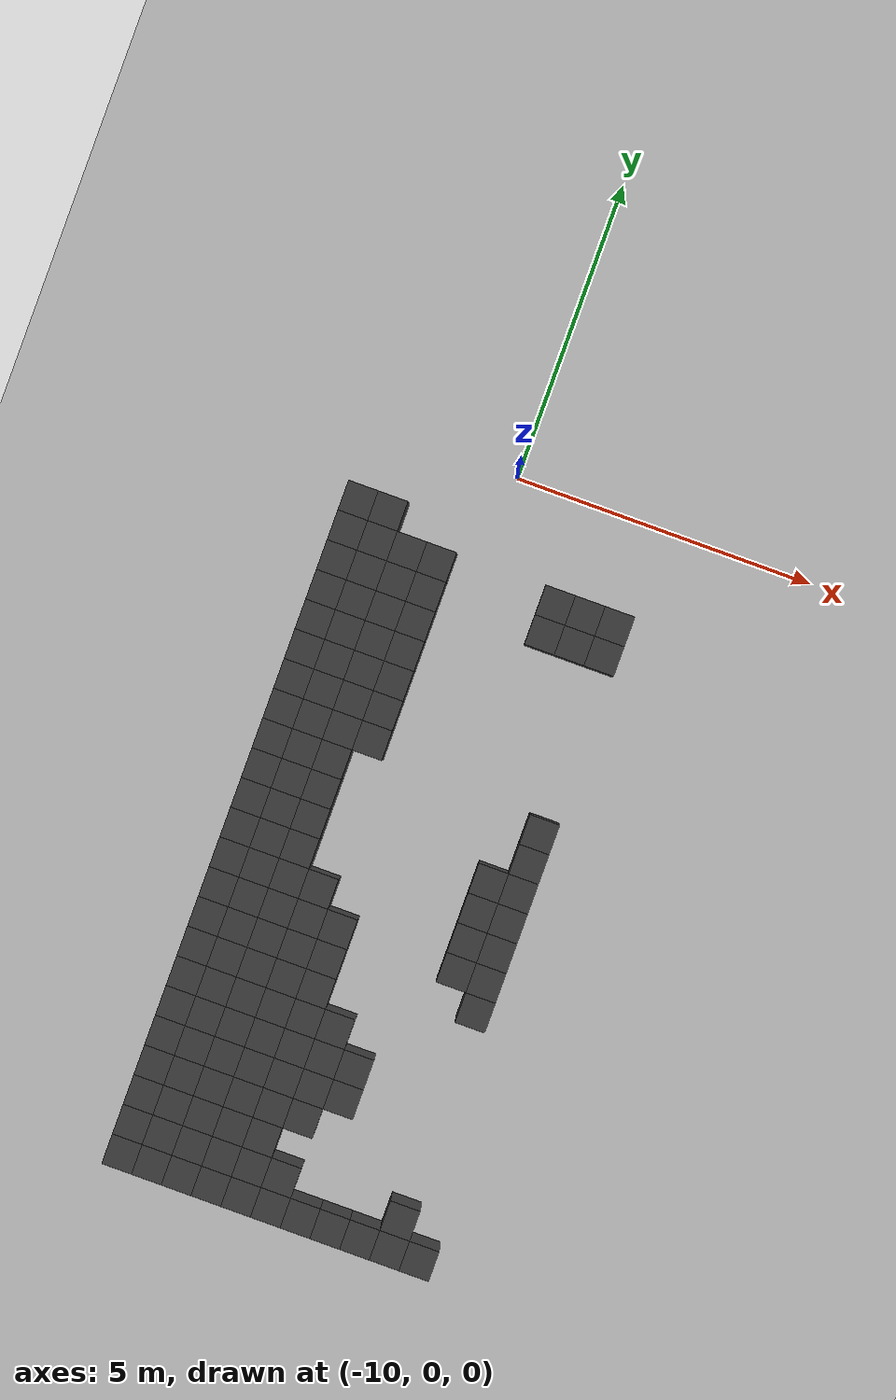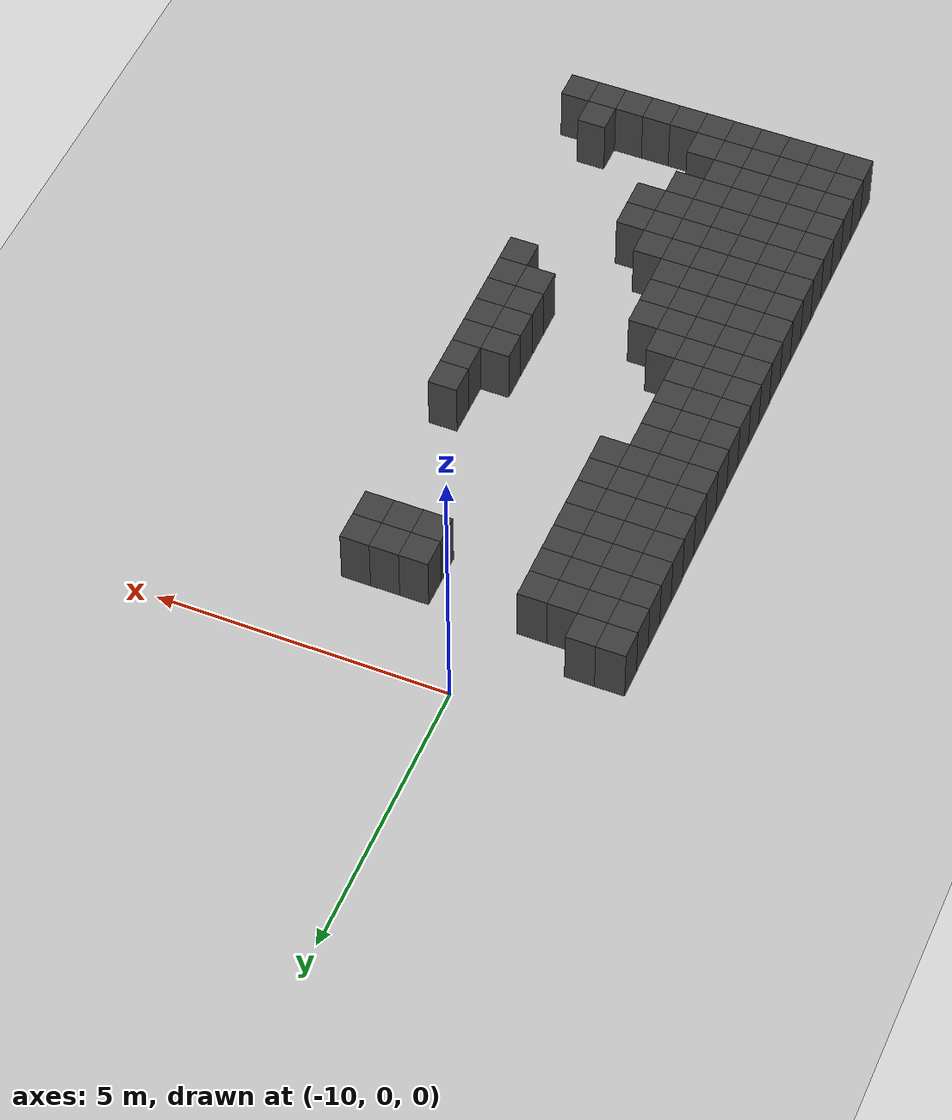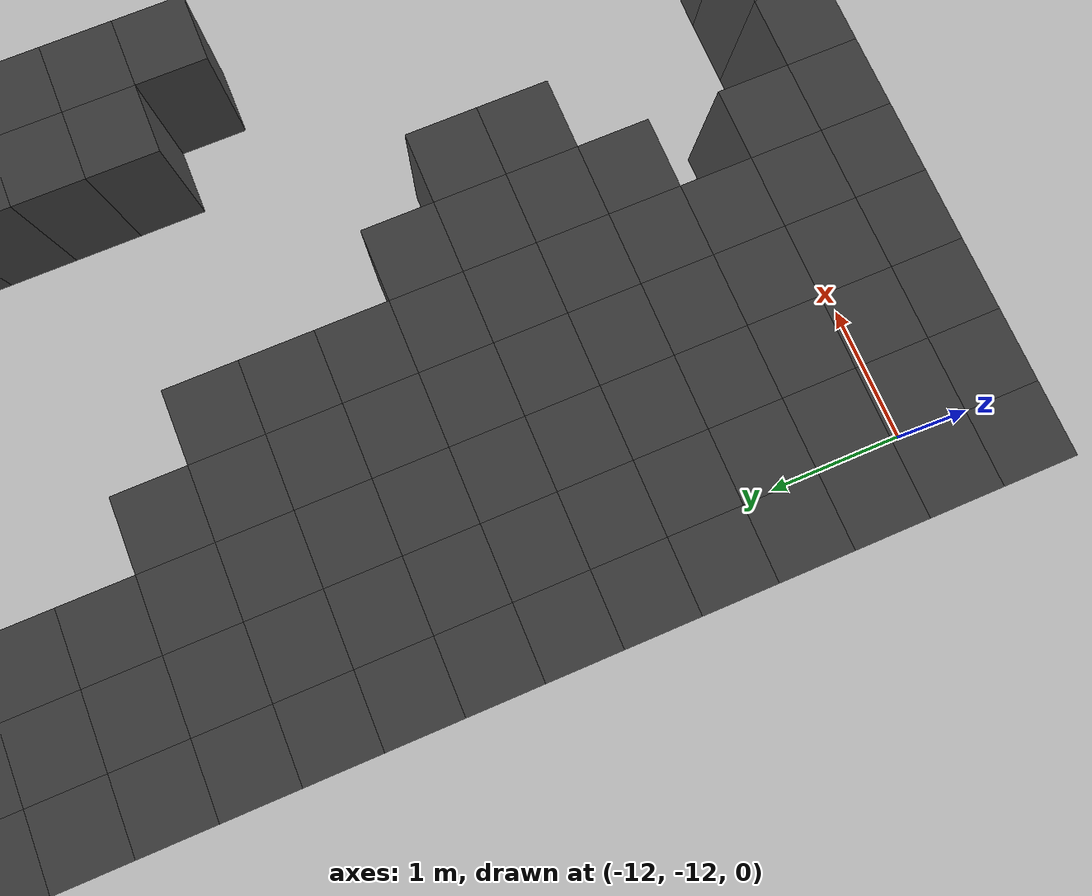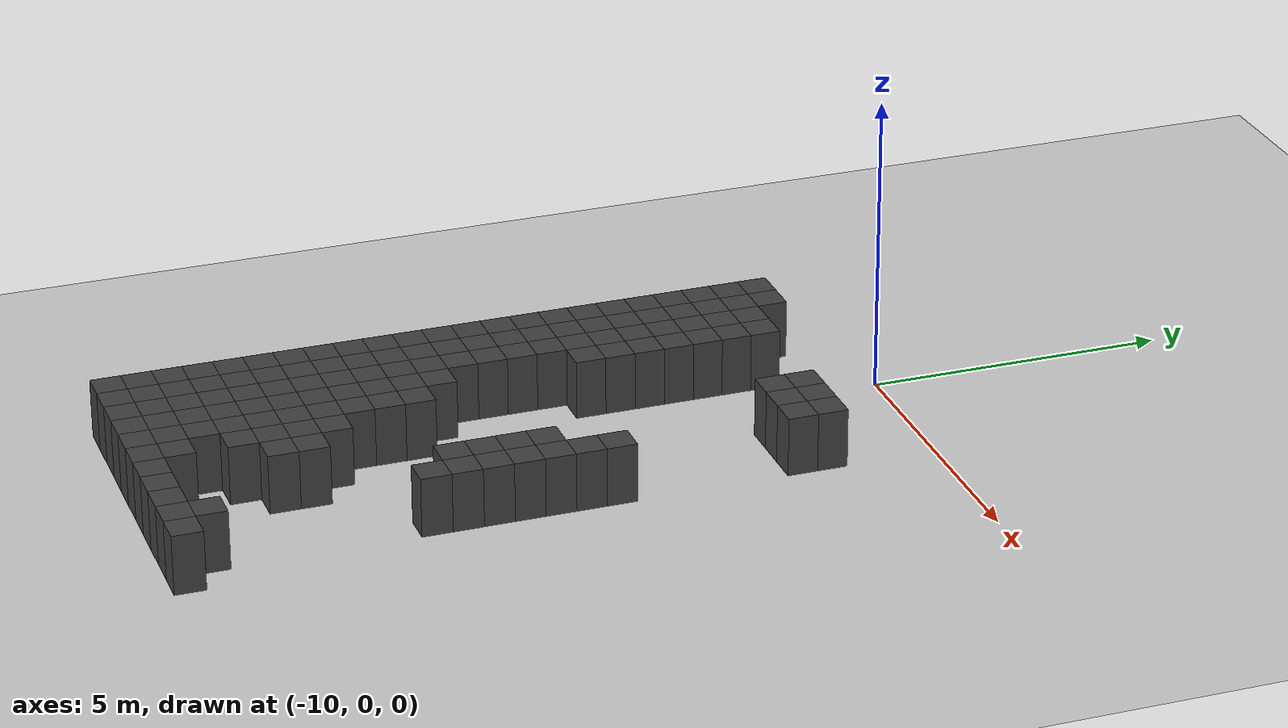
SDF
<sdf version="1.7">
 <world name="map_9713">
  <model name="ground_plane">
   <static>true</static>
   <link name="link">
    <collision name="collision">
     <geometry><plane><normal>0 0 1</normal><size>200 200</size></plane></geometry>
    </collision>
    <visual name="visual">
     <geometry><plane><normal>0 0 1</normal><size>200 200</size></plane></geometry>
     <material><ambient>0.8 0.8 0.8 1</ambient><diffuse>0.8 0.8 0.8 1</diffuse></material>
    </visual>
   </link>
  </model>
  <model name="maze_environment">
   <static>true</static>
   <link name="wall_489">
    <pose>-12.250 -1.250 0.500 0 0 0</pose>
    <collision name="col"><geometry><box><size>0.5 0.5 1.0</size></box></geometry></collision>
    <visual name="vis">
     <geometry><box><size>0.5 0.5 1.0</size></box></geometry>
     <material><ambient>0.15 0.15 0.15 1</ambient><diffuse>0.25 0.25 0.25 1</diffuse></material>
    </visual>
   </link>
   <link name="wall_490">
    <pose>-11.750 -1.250 0.500 0 0 0</pose>
    <collision name="col"><geometry><box><size>0.5 0.5 1.0</size></box></geometry></collision>
    <visual name="vis">
     <geometry><box><size>0.5 0.5 1.0</size></box></geometry>
     <material><ambient>0.15 0.15 0.15 1</ambient><diffuse>0.25 0.25 0.25 1</diffuse></material>
    </visual>
   </link>
   <link name="wall_512">
    <pose>-12.250 -1.750 0.500 0 0 0</pose>
    <collision name="col"><geometry><box><size>0.5 0.5 1.0</size></box></geometry></collision>
    <visual name="vis">
     <geometry><box><size>0.5 0.5 1.0</size></box></geometry>
     <material><ambient>0.15 0.15 0.15 1</ambient><diffuse>0.25 0.25 0.25 1</diffuse></material>
    </visual>
   </link>
   <link name="wall_513">
    <pose>-11.750 -1.750 0.500 0 0 0</pose>
    <collision name="col"><geometry><box><size>0.5 0.5 1.0</size></box></geometry></collision>
    <visual name="vis">
     <geometry><box><size>0.5 0.5 1.0</size></box></geometry>
     <material><ambient>0.15 0.15 0.15 1</ambient><diffuse>0.25 0.25 0.25 1</diffuse></material>
    </visual>
   </link>
   <link name="wall_514">
    <pose>-11.250 -1.750 0.500 0 0 0</pose>
    <collision name="col"><geometry><box><size>0.5 0.5 1.0</size></box></geometry></collision>
    <visual name="vis">
     <geometry><box><size>0.5 0.5 1.0</size></box></geometry>
     <material><ambient>0.15 0.15 0.15 1</ambient><diffuse>0.25 0.25 0.25 1</diffuse></material>
    </visual>
   </link>
   <link name="wall_515">
    <pose>-10.750 -1.750 0.500 0 0 0</pose>
    <collision name="col"><geometry><box><size>0.5 0.5 1.0</size></box></geometry></collision>
    <visual name="vis">
     <geometry><box><size>0.5 0.5 1.0</size></box></geometry>
     <material><ambient>0.15 0.15 0.15 1</ambient><diffuse>0.25 0.25 0.25 1</diffuse></material>
    </visual>
   </link>
   <link name="wall_516">
    <pose>-8.750 -1.750 0.500 0 0 0</pose>
    <collision name="col"><geometry><box><size>0.5 0.5 1.0</size></box></geometry></collision>
    <visual name="vis">
     <geometry><box><size>0.5 0.5 1.0</size></box></geometry>
     <material><ambient>0.15 0.15 0.15 1</ambient><diffuse>0.25 0.25 0.25 1</diffuse></material>
    </visual>
   </link>
   <link name="wall_517">
    <pose>-8.250 -1.750 0.500 0 0 0</pose>
    <collision name="col"><geometry><box><size>0.5 0.5 1.0</size></box></geometry></collision>
    <visual name="vis">
     <geometry><box><size>0.5 0.5 1.0</size></box></geometry>
     <material><ambient>0.15 0.15 0.15 1</ambient><diffuse>0.25 0.25 0.25 1</diffuse></material>
    </visual>
   </link>
   <link name="wall_518">
    <pose>-7.750 -1.750 0.500 0 0 0</pose>
    <collision name="col"><geometry><box><size>0.5 0.5 1.0</size></box></geometry></collision>
    <visual name="vis">
     <geometry><box><size>0.5 0.5 1.0</size></box></geometry>
     <material><ambient>0.15 0.15 0.15 1</ambient><diffuse>0.25 0.25 0.25 1</diffuse></material>
    </visual>
   </link>
   <link name="wall_533">
    <pose>-12.250 -2.250 0.500 0 0 0</pose>
    <collision name="col"><geometry><box><size>0.5 0.5 1.0</size></box></geometry></collision>
    <visual name="vis">
     <geometry><box><size>0.5 0.5 1.0</size></box></geometry>
     <material><ambient>0.15 0.15 0.15 1</ambient><diffuse>0.25 0.25 0.25 1</diffuse></material>
    </visual>
   </link>
   <link name="wall_534">
    <pose>-11.750 -2.250 0.500 0 0 0</pose>
    <collision name="col"><geometry><box><size>0.5 0.5 1.0</size></box></geometry></collision>
    <visual name="vis">
     <geometry><box><size>0.5 0.5 1.0</size></box></geometry>
     <material><ambient>0.15 0.15 0.15 1</ambient><diffuse>0.25 0.25 0.25 1</diffuse></material>
    </visual>
   </link>
   <link name="wall_535">
    <pose>-11.250 -2.250 0.500 0 0 0</pose>
    <collision name="col"><geometry><box><size>0.5 0.5 1.0</size></box></geometry></collision>
    <visual name="vis">
     <geometry><box><size>0.5 0.5 1.0</size></box></geometry>
     <material><ambient>0.15 0.15 0.15 1</ambient><diffuse>0.25 0.25 0.25 1</diffuse></material>
    </visual>
   </link>
   <link name="wall_536">
    <pose>-10.750 -2.250 0.500 0 0 0</pose>
    <collision name="col"><geometry><box><size>0.5 0.5 1.0</size></box></geometry></collision>
    <visual name="vis">
     <geometry><box><size>0.5 0.5 1.0</size></box></geometry>
     <material><ambient>0.15 0.15 0.15 1</ambient><diffuse>0.25 0.25 0.25 1</diffuse></material>
    </visual>
   </link>
   <link name="wall_537">
    <pose>-8.750 -2.250 0.500 0 0 0</pose>
    <collision name="col"><geometry><box><size>0.5 0.5 1.0</size></box></geometry></collision>
    <visual name="vis">
     <geometry><box><size>0.5 0.5 1.0</size></box></geometry>
     <material><ambient>0.15 0.15 0.15 1</ambient><diffuse>0.25 0.25 0.25 1</diffuse></material>
    </visual>
   </link>
   <link name="wall_538">
    <pose>-8.250 -2.250 0.500 0 0 0</pose>
    <collision name="col"><geometry><box><size>0.5 0.5 1.0</size></box></geometry></collision>
    <visual name="vis">
     <geometry><box><size>0.5 0.5 1.0</size></box></geometry>
     <material><ambient>0.15 0.15 0.15 1</ambient><diffuse>0.25 0.25 0.25 1</diffuse></material>
    </visual>
   </link>
   <link name="wall_539">
    <pose>-7.750 -2.250 0.500 0 0 0</pose>
    <collision name="col"><geometry><box><size>0.5 0.5 1.0</size></box></geometry></collision>
    <visual name="vis">
     <geometry><box><size>0.5 0.5 1.0</size></box></geometry>
     <material><ambient>0.15 0.15 0.15 1</ambient><diffuse>0.25 0.25 0.25 1</diffuse></material>
    </visual>
   </link>
   <link name="wall_557">
    <pose>-12.250 -2.750 0.500 0 0 0</pose>
    <collision name="col"><geometry><box><size>0.5 0.5 1.0</size></box></geometry></collision>
    <visual name="vis">
     <geometry><box><size>0.5 0.5 1.0</size></box></geometry>
     <material><ambient>0.15 0.15 0.15 1</ambient><diffuse>0.25 0.25 0.25 1</diffuse></material>
    </visual>
   </link>
   <link name="wall_558">
    <pose>-11.750 -2.750 0.500 0 0 0</pose>
    <collision name="col"><geometry><box><size>0.5 0.5 1.0</size></box></geometry></collision>
    <visual name="vis">
     <geometry><box><size>0.5 0.5 1.0</size></box></geometry>
     <material><ambient>0.15 0.15 0.15 1</ambient><diffuse>0.25 0.25 0.25 1</diffuse></material>
    </visual>
   </link>
   <link name="wall_559">
    <pose>-11.250 -2.750 0.500 0 0 0</pose>
    <collision name="col"><geometry><box><size>0.5 0.5 1.0</size></box></geometry></collision>
    <visual name="vis">
     <geometry><box><size>0.5 0.5 1.0</size></box></geometry>
     <material><ambient>0.15 0.15 0.15 1</ambient><diffuse>0.25 0.25 0.25 1</diffuse></material>
    </visual>
   </link>
   <link name="wall_560">
    <pose>-10.750 -2.750 0.500 0 0 0</pose>
    <collision name="col"><geometry><box><size>0.5 0.5 1.0</size></box></geometry></collision>
    <visual name="vis">
     <geometry><box><size>0.5 0.5 1.0</size></box></geometry>
     <material><ambient>0.15 0.15 0.15 1</ambient><diffuse>0.25 0.25 0.25 1</diffuse></material>
    </visual>
   </link>
   <link name="wall_579">
    <pose>-12.250 -3.250 0.500 0 0 0</pose>
    <collision name="col"><geometry><box><size>0.5 0.5 1.0</size></box></geometry></collision>
    <visual name="vis">
     <geometry><box><size>0.5 0.5 1.0</size></box></geometry>
     <material><ambient>0.15 0.15 0.15 1</ambient><diffuse>0.25 0.25 0.25 1</diffuse></material>
    </visual>
   </link>
   <link name="wall_580">
    <pose>-11.750 -3.250 0.500 0 0 0</pose>
    <collision name="col"><geometry><box><size>0.5 0.5 1.0</size></box></geometry></collision>
    <visual name="vis">
     <geometry><box><size>0.5 0.5 1.0</size></box></geometry>
     <material><ambient>0.15 0.15 0.15 1</ambient><diffuse>0.25 0.25 0.25 1</diffuse></material>
    </visual>
   </link>
   <link name="wall_581">
    <pose>-11.250 -3.250 0.500 0 0 0</pose>
    <collision name="col"><geometry><box><size>0.5 0.5 1.0</size></box></geometry></collision>
    <visual name="vis">
     <geometry><box><size>0.5 0.5 1.0</size></box></geometry>
     <material><ambient>0.15 0.15 0.15 1</ambient><diffuse>0.25 0.25 0.25 1</diffuse></material>
    </visual>
   </link>
   <link name="wall_582">
    <pose>-10.750 -3.250 0.500 0 0 0</pose>
    <collision name="col"><geometry><box><size>0.5 0.5 1.0</size></box></geometry></collision>
    <visual name="vis">
     <geometry><box><size>0.5 0.5 1.0</size></box></geometry>
     <material><ambient>0.15 0.15 0.15 1</ambient><diffuse>0.25 0.25 0.25 1</diffuse></material>
    </visual>
   </link>
   <link name="wall_601">
    <pose>-12.250 -3.750 0.500 0 0 0</pose>
    <collision name="col"><geometry><box><size>0.5 0.5 1.0</size></box></geometry></collision>
    <visual name="vis">
     <geometry><box><size>0.5 0.5 1.0</size></box></geometry>
     <material><ambient>0.15 0.15 0.15 1</ambient><diffuse>0.25 0.25 0.25 1</diffuse></material>
    </visual>
   </link>
   <link name="wall_602">
    <pose>-11.750 -3.750 0.500 0 0 0</pose>
    <collision name="col"><geometry><box><size>0.5 0.5 1.0</size></box></geometry></collision>
    <visual name="vis">
     <geometry><box><size>0.5 0.5 1.0</size></box></geometry>
     <material><ambient>0.15 0.15 0.15 1</ambient><diffuse>0.25 0.25 0.25 1</diffuse></material>
    </visual>
   </link>
   <link name="wall_603">
    <pose>-11.250 -3.750 0.500 0 0 0</pose>
    <collision name="col"><geometry><box><size>0.5 0.5 1.0</size></box></geometry></collision>
    <visual name="vis">
     <geometry><box><size>0.5 0.5 1.0</size></box></geometry>
     <material><ambient>0.15 0.15 0.15 1</ambient><diffuse>0.25 0.25 0.25 1</diffuse></material>
    </visual>
   </link>
   <link name="wall_604">
    <pose>-10.750 -3.750 0.500 0 0 0</pose>
    <collision name="col"><geometry><box><size>0.5 0.5 1.0</size></box></geometry></collision>
    <visual name="vis">
     <geometry><box><size>0.5 0.5 1.0</size></box></geometry>
     <material><ambient>0.15 0.15 0.15 1</ambient><diffuse>0.25 0.25 0.25 1</diffuse></material>
    </visual>
   </link>
   <link name="wall_621">
    <pose>-12.250 -4.250 0.500 0 0 0</pose>
    <collision name="col"><geometry><box><size>0.5 0.5 1.0</size></box></geometry></collision>
    <visual name="vis">
     <geometry><box><size>0.5 0.5 1.0</size></box></geometry>
     <material><ambient>0.15 0.15 0.15 1</ambient><diffuse>0.25 0.25 0.25 1</diffuse></material>
    </visual>
   </link>
   <link name="wall_622">
    <pose>-11.750 -4.250 0.500 0 0 0</pose>
    <collision name="col"><geometry><box><size>0.5 0.5 1.0</size></box></geometry></collision>
    <visual name="vis">
     <geometry><box><size>0.5 0.5 1.0</size></box></geometry>
     <material><ambient>0.15 0.15 0.15 1</ambient><diffuse>0.25 0.25 0.25 1</diffuse></material>
    </visual>
   </link>
   <link name="wall_623">
    <pose>-11.250 -4.250 0.500 0 0 0</pose>
    <collision name="col"><geometry><box><size>0.5 0.5 1.0</size></box></geometry></collision>
    <visual name="vis">
     <geometry><box><size>0.5 0.5 1.0</size></box></geometry>
     <material><ambient>0.15 0.15 0.15 1</ambient><diffuse>0.25 0.25 0.25 1</diffuse></material>
    </visual>
   </link>
   <link name="wall_624">
    <pose>-10.750 -4.250 0.500 0 0 0</pose>
    <collision name="col"><geometry><box><size>0.5 0.5 1.0</size></box></geometry></collision>
    <visual name="vis">
     <geometry><box><size>0.5 0.5 1.0</size></box></geometry>
     <material><ambient>0.15 0.15 0.15 1</ambient><diffuse>0.25 0.25 0.25 1</diffuse></material>
    </visual>
   </link>
   <link name="wall_637">
    <pose>-12.250 -4.750 0.500 0 0 0</pose>
    <collision name="col"><geometry><box><size>0.5 0.5 1.0</size></box></geometry></collision>
    <visual name="vis">
     <geometry><box><size>0.5 0.5 1.0</size></box></geometry>
     <material><ambient>0.15 0.15 0.15 1</ambient><diffuse>0.25 0.25 0.25 1</diffuse></material>
    </visual>
   </link>
   <link name="wall_638">
    <pose>-11.750 -4.750 0.500 0 0 0</pose>
    <collision name="col"><geometry><box><size>0.5 0.5 1.0</size></box></geometry></collision>
    <visual name="vis">
     <geometry><box><size>0.5 0.5 1.0</size></box></geometry>
     <material><ambient>0.15 0.15 0.15 1</ambient><diffuse>0.25 0.25 0.25 1</diffuse></material>
    </visual>
   </link>
   <link name="wall_639">
    <pose>-11.250 -4.750 0.500 0 0 0</pose>
    <collision name="col"><geometry><box><size>0.5 0.5 1.0</size></box></geometry></collision>
    <visual name="vis">
     <geometry><box><size>0.5 0.5 1.0</size></box></geometry>
     <material><ambient>0.15 0.15 0.15 1</ambient><diffuse>0.25 0.25 0.25 1</diffuse></material>
    </visual>
   </link>
   <link name="wall_640">
    <pose>-10.750 -4.750 0.500 0 0 0</pose>
    <collision name="col"><geometry><box><size>0.5 0.5 1.0</size></box></geometry></collision>
    <visual name="vis">
     <geometry><box><size>0.5 0.5 1.0</size></box></geometry>
     <material><ambient>0.15 0.15 0.15 1</ambient><diffuse>0.25 0.25 0.25 1</diffuse></material>
    </visual>
   </link>
   <link name="wall_652">
    <pose>-12.250 -5.250 0.500 0 0 0</pose>
    <collision name="col"><geometry><box><size>0.5 0.5 1.0</size></box></geometry></collision>
    <visual name="vis">
     <geometry><box><size>0.5 0.5 1.0</size></box></geometry>
     <material><ambient>0.15 0.15 0.15 1</ambient><diffuse>0.25 0.25 0.25 1</diffuse></material>
    </visual>
   </link>
   <link name="wall_653">
    <pose>-11.750 -5.250 0.500 0 0 0</pose>
    <collision name="col"><geometry><box><size>0.5 0.5 1.0</size></box></geometry></collision>
    <visual name="vis">
     <geometry><box><size>0.5 0.5 1.0</size></box></geometry>
     <material><ambient>0.15 0.15 0.15 1</ambient><diffuse>0.25 0.25 0.25 1</diffuse></material>
    </visual>
   </link>
   <link name="wall_654">
    <pose>-11.250 -5.250 0.500 0 0 0</pose>
    <collision name="col"><geometry><box><size>0.5 0.5 1.0</size></box></geometry></collision>
    <visual name="vis">
     <geometry><box><size>0.5 0.5 1.0</size></box></geometry>
     <material><ambient>0.15 0.15 0.15 1</ambient><diffuse>0.25 0.25 0.25 1</diffuse></material>
    </visual>
   </link>
   <link name="wall_655">
    <pose>-7.750 -5.250 0.500 0 0 0</pose>
    <collision name="col"><geometry><box><size>0.5 0.5 1.0</size></box></geometry></collision>
    <visual name="vis">
     <geometry><box><size>0.5 0.5 1.0</size></box></geometry>
     <material><ambient>0.15 0.15 0.15 1</ambient><diffuse>0.25 0.25 0.25 1</diffuse></material>
    </visual>
   </link>
   <link name="wall_668">
    <pose>-12.250 -5.750 0.500 0 0 0</pose>
    <collision name="col"><geometry><box><size>0.5 0.5 1.0</size></box></geometry></collision>
    <visual name="vis">
     <geometry><box><size>0.5 0.5 1.0</size></box></geometry>
     <material><ambient>0.15 0.15 0.15 1</ambient><diffuse>0.25 0.25 0.25 1</diffuse></material>
    </visual>
   </link>
   <link name="wall_669">
    <pose>-11.750 -5.750 0.500 0 0 0</pose>
    <collision name="col"><geometry><box><size>0.5 0.5 1.0</size></box></geometry></collision>
    <visual name="vis">
     <geometry><box><size>0.5 0.5 1.0</size></box></geometry>
     <material><ambient>0.15 0.15 0.15 1</ambient><diffuse>0.25 0.25 0.25 1</diffuse></material>
    </visual>
   </link>
   <link name="wall_670">
    <pose>-11.250 -5.750 0.500 0 0 0</pose>
    <collision name="col"><geometry><box><size>0.5 0.5 1.0</size></box></geometry></collision>
    <visual name="vis">
     <geometry><box><size>0.5 0.5 1.0</size></box></geometry>
     <material><ambient>0.15 0.15 0.15 1</ambient><diffuse>0.25 0.25 0.25 1</diffuse></material>
    </visual>
   </link>
   <link name="wall_671">
    <pose>-7.750 -5.750 0.500 0 0 0</pose>
    <collision name="col"><geometry><box><size>0.5 0.5 1.0</size></box></geometry></collision>
    <visual name="vis">
     <geometry><box><size>0.5 0.5 1.0</size></box></geometry>
     <material><ambient>0.15 0.15 0.15 1</ambient><diffuse>0.25 0.25 0.25 1</diffuse></material>
    </visual>
   </link>
   <link name="wall_687">
    <pose>-12.250 -6.250 0.500 0 0 0</pose>
    <collision name="col"><geometry><box><size>0.5 0.5 1.0</size></box></geometry></collision>
    <visual name="vis">
     <geometry><box><size>0.5 0.5 1.0</size></box></geometry>
     <material><ambient>0.15 0.15 0.15 1</ambient><diffuse>0.25 0.25 0.25 1</diffuse></material>
    </visual>
   </link>
   <link name="wall_688">
    <pose>-11.750 -6.250 0.500 0 0 0</pose>
    <collision name="col"><geometry><box><size>0.5 0.5 1.0</size></box></geometry></collision>
    <visual name="vis">
     <geometry><box><size>0.5 0.5 1.0</size></box></geometry>
     <material><ambient>0.15 0.15 0.15 1</ambient><diffuse>0.25 0.25 0.25 1</diffuse></material>
    </visual>
   </link>
   <link name="wall_689">
    <pose>-11.250 -6.250 0.500 0 0 0</pose>
    <collision name="col"><geometry><box><size>0.5 0.5 1.0</size></box></geometry></collision>
    <visual name="vis">
     <geometry><box><size>0.5 0.5 1.0</size></box></geometry>
     <material><ambient>0.15 0.15 0.15 1</ambient><diffuse>0.25 0.25 0.25 1</diffuse></material>
    </visual>
   </link>
   <link name="wall_690">
    <pose>-8.250 -6.250 0.500 0 0 0</pose>
    <collision name="col"><geometry><box><size>0.5 0.5 1.0</size></box></geometry></collision>
    <visual name="vis">
     <geometry><box><size>0.5 0.5 1.0</size></box></geometry>
     <material><ambient>0.15 0.15 0.15 1</ambient><diffuse>0.25 0.25 0.25 1</diffuse></material>
    </visual>
   </link>
   <link name="wall_691">
    <pose>-7.750 -6.250 0.500 0 0 0</pose>
    <collision name="col"><geometry><box><size>0.5 0.5 1.0</size></box></geometry></collision>
    <visual name="vis">
     <geometry><box><size>0.5 0.5 1.0</size></box></geometry>
     <material><ambient>0.15 0.15 0.15 1</ambient><diffuse>0.25 0.25 0.25 1</diffuse></material>
    </visual>
   </link>
   <link name="wall_711">
    <pose>-12.250 -6.750 0.500 0 0 0</pose>
    <collision name="col"><geometry><box><size>0.5 0.5 1.0</size></box></geometry></collision>
    <visual name="vis">
     <geometry><box><size>0.5 0.5 1.0</size></box></geometry>
     <material><ambient>0.15 0.15 0.15 1</ambient><diffuse>0.25 0.25 0.25 1</diffuse></material>
    </visual>
   </link>
   <link name="wall_712">
    <pose>-11.750 -6.750 0.500 0 0 0</pose>
    <collision name="col"><geometry><box><size>0.5 0.5 1.0</size></box></geometry></collision>
    <visual name="vis">
     <geometry><box><size>0.5 0.5 1.0</size></box></geometry>
     <material><ambient>0.15 0.15 0.15 1</ambient><diffuse>0.25 0.25 0.25 1</diffuse></material>
    </visual>
   </link>
   <link name="wall_713">
    <pose>-11.250 -6.750 0.500 0 0 0</pose>
    <collision name="col"><geometry><box><size>0.5 0.5 1.0</size></box></geometry></collision>
    <visual name="vis">
     <geometry><box><size>0.5 0.5 1.0</size></box></geometry>
     <material><ambient>0.15 0.15 0.15 1</ambient><diffuse>0.25 0.25 0.25 1</diffuse></material>
    </visual>
   </link>
   <link name="wall_714">
    <pose>-8.250 -6.750 0.500 0 0 0</pose>
    <collision name="col"><geometry><box><size>0.5 0.5 1.0</size></box></geometry></collision>
    <visual name="vis">
     <geometry><box><size>0.5 0.5 1.0</size></box></geometry>
     <material><ambient>0.15 0.15 0.15 1</ambient><diffuse>0.25 0.25 0.25 1</diffuse></material>
    </visual>
   </link>
   <link name="wall_715">
    <pose>-7.750 -6.750 0.500 0 0 0</pose>
    <collision name="col"><geometry><box><size>0.5 0.5 1.0</size></box></geometry></collision>
    <visual name="vis">
     <geometry><box><size>0.5 0.5 1.0</size></box></geometry>
     <material><ambient>0.15 0.15 0.15 1</ambient><diffuse>0.25 0.25 0.25 1</diffuse></material>
    </visual>
   </link>
   <link name="wall_741">
    <pose>-12.250 -7.250 0.500 0 0 0</pose>
    <collision name="col"><geometry><box><size>0.5 0.5 1.0</size></box></geometry></collision>
    <visual name="vis">
     <geometry><box><size>0.5 0.5 1.0</size></box></geometry>
     <material><ambient>0.15 0.15 0.15 1</ambient><diffuse>0.25 0.25 0.25 1</diffuse></material>
    </visual>
   </link>
   <link name="wall_742">
    <pose>-11.750 -7.250 0.500 0 0 0</pose>
    <collision name="col"><geometry><box><size>0.5 0.5 1.0</size></box></geometry></collision>
    <visual name="vis">
     <geometry><box><size>0.5 0.5 1.0</size></box></geometry>
     <material><ambient>0.15 0.15 0.15 1</ambient><diffuse>0.25 0.25 0.25 1</diffuse></material>
    </visual>
   </link>
   <link name="wall_743">
    <pose>-11.250 -7.250 0.500 0 0 0</pose>
    <collision name="col"><geometry><box><size>0.5 0.5 1.0</size></box></geometry></collision>
    <visual name="vis">
     <geometry><box><size>0.5 0.5 1.0</size></box></geometry>
     <material><ambient>0.15 0.15 0.15 1</ambient><diffuse>0.25 0.25 0.25 1</diffuse></material>
    </visual>
   </link>
   <link name="wall_744">
    <pose>-10.750 -7.250 0.500 0 0 0</pose>
    <collision name="col"><geometry><box><size>0.5 0.5 1.0</size></box></geometry></collision>
    <visual name="vis">
     <geometry><box><size>0.5 0.5 1.0</size></box></geometry>
     <material><ambient>0.15 0.15 0.15 1</ambient><diffuse>0.25 0.25 0.25 1</diffuse></material>
    </visual>
   </link>
   <link name="wall_745">
    <pose>-8.250 -7.250 0.500 0 0 0</pose>
    <collision name="col"><geometry><box><size>0.5 0.5 1.0</size></box></geometry></collision>
    <visual name="vis">
     <geometry><box><size>0.5 0.5 1.0</size></box></geometry>
     <material><ambient>0.15 0.15 0.15 1</ambient><diffuse>0.25 0.25 0.25 1</diffuse></material>
    </visual>
   </link>
   <link name="wall_746">
    <pose>-7.750 -7.250 0.500 0 0 0</pose>
    <collision name="col"><geometry><box><size>0.5 0.5 1.0</size></box></geometry></collision>
    <visual name="vis">
     <geometry><box><size>0.5 0.5 1.0</size></box></geometry>
     <material><ambient>0.15 0.15 0.15 1</ambient><diffuse>0.25 0.25 0.25 1</diffuse></material>
    </visual>
   </link>
   <link name="wall_772">
    <pose>-12.250 -7.750 0.500 0 0 0</pose>
    <collision name="col"><geometry><box><size>0.5 0.5 1.0</size></box></geometry></collision>
    <visual name="vis">
     <geometry><box><size>0.5 0.5 1.0</size></box></geometry>
     <material><ambient>0.15 0.15 0.15 1</ambient><diffuse>0.25 0.25 0.25 1</diffuse></material>
    </visual>
   </link>
   <link name="wall_773">
    <pose>-11.750 -7.750 0.500 0 0 0</pose>
    <collision name="col"><geometry><box><size>0.5 0.5 1.0</size></box></geometry></collision>
    <visual name="vis">
     <geometry><box><size>0.5 0.5 1.0</size></box></geometry>
     <material><ambient>0.15 0.15 0.15 1</ambient><diffuse>0.25 0.25 0.25 1</diffuse></material>
    </visual>
   </link>
   <link name="wall_774">
    <pose>-11.250 -7.750 0.500 0 0 0</pose>
    <collision name="col"><geometry><box><size>0.5 0.5 1.0</size></box></geometry></collision>
    <visual name="vis">
     <geometry><box><size>0.5 0.5 1.0</size></box></geometry>
     <material><ambient>0.15 0.15 0.15 1</ambient><diffuse>0.25 0.25 0.25 1</diffuse></material>
    </visual>
   </link>
   <link name="wall_775">
    <pose>-10.750 -7.750 0.500 0 0 0</pose>
    <collision name="col"><geometry><box><size>0.5 0.5 1.0</size></box></geometry></collision>
    <visual name="vis">
     <geometry><box><size>0.5 0.5 1.0</size></box></geometry>
     <material><ambient>0.15 0.15 0.15 1</ambient><diffuse>0.25 0.25 0.25 1</diffuse></material>
    </visual>
   </link>
   <link name="wall_776">
    <pose>-10.250 -7.750 0.500 0 0 0</pose>
    <collision name="col"><geometry><box><size>0.5 0.5 1.0</size></box></geometry></collision>
    <visual name="vis">
     <geometry><box><size>0.5 0.5 1.0</size></box></geometry>
     <material><ambient>0.15 0.15 0.15 1</ambient><diffuse>0.25 0.25 0.25 1</diffuse></material>
    </visual>
   </link>
   <link name="wall_777">
    <pose>-8.250 -7.750 0.500 0 0 0</pose>
    <collision name="col"><geometry><box><size>0.5 0.5 1.0</size></box></geometry></collision>
    <visual name="vis">
     <geometry><box><size>0.5 0.5 1.0</size></box></geometry>
     <material><ambient>0.15 0.15 0.15 1</ambient><diffuse>0.25 0.25 0.25 1</diffuse></material>
    </visual>
   </link>
   <link name="wall_778">
    <pose>-7.750 -7.750 0.500 0 0 0</pose>
    <collision name="col"><geometry><box><size>0.5 0.5 1.0</size></box></geometry></collision>
    <visual name="vis">
     <geometry><box><size>0.5 0.5 1.0</size></box></geometry>
     <material><ambient>0.15 0.15 0.15 1</ambient><diffuse>0.25 0.25 0.25 1</diffuse></material>
    </visual>
   </link>
   <link name="wall_800">
    <pose>-12.250 -8.250 0.500 0 0 0</pose>
    <collision name="col"><geometry><box><size>0.5 0.5 1.0</size></box></geometry></collision>
    <visual name="vis">
     <geometry><box><size>0.5 0.5 1.0</size></box></geometry>
     <material><ambient>0.15 0.15 0.15 1</ambient><diffuse>0.25 0.25 0.25 1</diffuse></material>
    </visual>
   </link>
   <link name="wall_801">
    <pose>-11.750 -8.250 0.500 0 0 0</pose>
    <collision name="col"><geometry><box><size>0.5 0.5 1.0</size></box></geometry></collision>
    <visual name="vis">
     <geometry><box><size>0.5 0.5 1.0</size></box></geometry>
     <material><ambient>0.15 0.15 0.15 1</ambient><diffuse>0.25 0.25 0.25 1</diffuse></material>
    </visual>
   </link>
   <link name="wall_802">
    <pose>-11.250 -8.250 0.500 0 0 0</pose>
    <collision name="col"><geometry><box><size>0.5 0.5 1.0</size></box></geometry></collision>
    <visual name="vis">
     <geometry><box><size>0.5 0.5 1.0</size></box></geometry>
     <material><ambient>0.15 0.15 0.15 1</ambient><diffuse>0.25 0.25 0.25 1</diffuse></material>
    </visual>
   </link>
   <link name="wall_803">
    <pose>-10.750 -8.250 0.500 0 0 0</pose>
    <collision name="col"><geometry><box><size>0.5 0.5 1.0</size></box></geometry></collision>
    <visual name="vis">
     <geometry><box><size>0.5 0.5 1.0</size></box></geometry>
     <material><ambient>0.15 0.15 0.15 1</ambient><diffuse>0.25 0.25 0.25 1</diffuse></material>
    </visual>
   </link>
   <link name="wall_804">
    <pose>-10.250 -8.250 0.500 0 0 0</pose>
    <collision name="col"><geometry><box><size>0.5 0.5 1.0</size></box></geometry></collision>
    <visual name="vis">
     <geometry><box><size>0.5 0.5 1.0</size></box></geometry>
     <material><ambient>0.15 0.15 0.15 1</ambient><diffuse>0.25 0.25 0.25 1</diffuse></material>
    </visual>
   </link>
   <link name="wall_805">
    <pose>-7.750 -8.250 0.500 0 0 0</pose>
    <collision name="col"><geometry><box><size>0.5 0.5 1.0</size></box></geometry></collision>
    <visual name="vis">
     <geometry><box><size>0.5 0.5 1.0</size></box></geometry>
     <material><ambient>0.15 0.15 0.15 1</ambient><diffuse>0.25 0.25 0.25 1</diffuse></material>
    </visual>
   </link>
   <link name="wall_822">
    <pose>-12.250 -8.750 0.500 0 0 0</pose>
    <collision name="col"><geometry><box><size>0.5 0.5 1.0</size></box></geometry></collision>
    <visual name="vis">
     <geometry><box><size>0.5 0.5 1.0</size></box></geometry>
     <material><ambient>0.15 0.15 0.15 1</ambient><diffuse>0.25 0.25 0.25 1</diffuse></material>
    </visual>
   </link>
   <link name="wall_823">
    <pose>-11.750 -8.750 0.500 0 0 0</pose>
    <collision name="col"><geometry><box><size>0.5 0.5 1.0</size></box></geometry></collision>
    <visual name="vis">
     <geometry><box><size>0.5 0.5 1.0</size></box></geometry>
     <material><ambient>0.15 0.15 0.15 1</ambient><diffuse>0.25 0.25 0.25 1</diffuse></material>
    </visual>
   </link>
   <link name="wall_824">
    <pose>-11.250 -8.750 0.500 0 0 0</pose>
    <collision name="col"><geometry><box><size>0.5 0.5 1.0</size></box></geometry></collision>
    <visual name="vis">
     <geometry><box><size>0.5 0.5 1.0</size></box></geometry>
     <material><ambient>0.15 0.15 0.15 1</ambient><diffuse>0.25 0.25 0.25 1</diffuse></material>
    </visual>
   </link>
   <link name="wall_825">
    <pose>-10.750 -8.750 0.500 0 0 0</pose>
    <collision name="col"><geometry><box><size>0.5 0.5 1.0</size></box></geometry></collision>
    <visual name="vis">
     <geometry><box><size>0.5 0.5 1.0</size></box></geometry>
     <material><ambient>0.15 0.15 0.15 1</ambient><diffuse>0.25 0.25 0.25 1</diffuse></material>
    </visual>
   </link>
   <link name="wall_826">
    <pose>-10.250 -8.750 0.500 0 0 0</pose>
    <collision name="col"><geometry><box><size>0.5 0.5 1.0</size></box></geometry></collision>
    <visual name="vis">
     <geometry><box><size>0.5 0.5 1.0</size></box></geometry>
     <material><ambient>0.15 0.15 0.15 1</ambient><diffuse>0.25 0.25 0.25 1</diffuse></material>
    </visual>
   </link>
   <link name="wall_841">
    <pose>-12.250 -9.250 0.500 0 0 0</pose>
    <collision name="col"><geometry><box><size>0.5 0.5 1.0</size></box></geometry></collision>
    <visual name="vis">
     <geometry><box><size>0.5 0.5 1.0</size></box></geometry>
     <material><ambient>0.15 0.15 0.15 1</ambient><diffuse>0.25 0.25 0.25 1</diffuse></material>
    </visual>
   </link>
   <link name="wall_842">
    <pose>-11.750 -9.250 0.500 0 0 0</pose>
    <collision name="col"><geometry><box><size>0.5 0.5 1.0</size></box></geometry></collision>
    <visual name="vis">
     <geometry><box><size>0.5 0.5 1.0</size></box></geometry>
     <material><ambient>0.15 0.15 0.15 1</ambient><diffuse>0.25 0.25 0.25 1</diffuse></material>
    </visual>
   </link>
   <link name="wall_843">
    <pose>-11.250 -9.250 0.500 0 0 0</pose>
    <collision name="col"><geometry><box><size>0.5 0.5 1.0</size></box></geometry></collision>
    <visual name="vis">
     <geometry><box><size>0.5 0.5 1.0</size></box></geometry>
     <material><ambient>0.15 0.15 0.15 1</ambient><diffuse>0.25 0.25 0.25 1</diffuse></material>
    </visual>
   </link>
   <link name="wall_844">
    <pose>-10.750 -9.250 0.500 0 0 0</pose>
    <collision name="col"><geometry><box><size>0.5 0.5 1.0</size></box></geometry></collision>
    <visual name="vis">
     <geometry><box><size>0.5 0.5 1.0</size></box></geometry>
     <material><ambient>0.15 0.15 0.15 1</ambient><diffuse>0.25 0.25 0.25 1</diffuse></material>
    </visual>
   </link>
   <link name="wall_845">
    <pose>-10.250 -9.250 0.500 0 0 0</pose>
    <collision name="col"><geometry><box><size>0.5 0.5 1.0</size></box></geometry></collision>
    <visual name="vis">
     <geometry><box><size>0.5 0.5 1.0</size></box></geometry>
     <material><ambient>0.15 0.15 0.15 1</ambient><diffuse>0.25 0.25 0.25 1</diffuse></material>
    </visual>
   </link>
   <link name="wall_846">
    <pose>-9.750 -9.250 0.500 0 0 0</pose>
    <collision name="col"><geometry><box><size>0.5 0.5 1.0</size></box></geometry></collision>
    <visual name="vis">
     <geometry><box><size>0.5 0.5 1.0</size></box></geometry>
     <material><ambient>0.15 0.15 0.15 1</ambient><diffuse>0.25 0.25 0.25 1</diffuse></material>
    </visual>
   </link>
   <link name="wall_858">
    <pose>-12.250 -9.750 0.500 0 0 0</pose>
    <collision name="col"><geometry><box><size>0.5 0.5 1.0</size></box></geometry></collision>
    <visual name="vis">
     <geometry><box><size>0.5 0.5 1.0</size></box></geometry>
     <material><ambient>0.15 0.15 0.15 1</ambient><diffuse>0.25 0.25 0.25 1</diffuse></material>
    </visual>
   </link>
   <link name="wall_859">
    <pose>-11.750 -9.750 0.500 0 0 0</pose>
    <collision name="col"><geometry><box><size>0.5 0.5 1.0</size></box></geometry></collision>
    <visual name="vis">
     <geometry><box><size>0.5 0.5 1.0</size></box></geometry>
     <material><ambient>0.15 0.15 0.15 1</ambient><diffuse>0.25 0.25 0.25 1</diffuse></material>
    </visual>
   </link>
   <link name="wall_860">
    <pose>-11.250 -9.750 0.500 0 0 0</pose>
    <collision name="col"><geometry><box><size>0.5 0.5 1.0</size></box></geometry></collision>
    <visual name="vis">
     <geometry><box><size>0.5 0.5 1.0</size></box></geometry>
     <material><ambient>0.15 0.15 0.15 1</ambient><diffuse>0.25 0.25 0.25 1</diffuse></material>
    </visual>
   </link>
   <link name="wall_861">
    <pose>-10.750 -9.750 0.500 0 0 0</pose>
    <collision name="col"><geometry><box><size>0.5 0.5 1.0</size></box></geometry></collision>
    <visual name="vis">
     <geometry><box><size>0.5 0.5 1.0</size></box></geometry>
     <material><ambient>0.15 0.15 0.15 1</ambient><diffuse>0.25 0.25 0.25 1</diffuse></material>
    </visual>
   </link>
   <link name="wall_862">
    <pose>-10.250 -9.750 0.500 0 0 0</pose>
    <collision name="col"><geometry><box><size>0.5 0.5 1.0</size></box></geometry></collision>
    <visual name="vis">
     <geometry><box><size>0.5 0.5 1.0</size></box></geometry>
     <material><ambient>0.15 0.15 0.15 1</ambient><diffuse>0.25 0.25 0.25 1</diffuse></material>
    </visual>
   </link>
   <link name="wall_863">
    <pose>-9.750 -9.750 0.500 0 0 0</pose>
    <collision name="col"><geometry><box><size>0.5 0.5 1.0</size></box></geometry></collision>
    <visual name="vis">
     <geometry><box><size>0.5 0.5 1.0</size></box></geometry>
     <material><ambient>0.15 0.15 0.15 1</ambient><diffuse>0.25 0.25 0.25 1</diffuse></material>
    </visual>
   </link>
   <link name="wall_864">
    <pose>-9.250 -9.750 0.500 0 0 0</pose>
    <collision name="col"><geometry><box><size>0.5 0.5 1.0</size></box></geometry></collision>
    <visual name="vis">
     <geometry><box><size>0.5 0.5 1.0</size></box></geometry>
     <material><ambient>0.15 0.15 0.15 1</ambient><diffuse>0.25 0.25 0.25 1</diffuse></material>
    </visual>
   </link>
   <link name="wall_877">
    <pose>-12.250 -10.250 0.500 0 0 0</pose>
    <collision name="col"><geometry><box><size>0.5 0.5 1.0</size></box></geometry></collision>
    <visual name="vis">
     <geometry><box><size>0.5 0.5 1.0</size></box></geometry>
     <material><ambient>0.15 0.15 0.15 1</ambient><diffuse>0.25 0.25 0.25 1</diffuse></material>
    </visual>
   </link>
   <link name="wall_878">
    <pose>-11.750 -10.250 0.500 0 0 0</pose>
    <collision name="col"><geometry><box><size>0.5 0.5 1.0</size></box></geometry></collision>
    <visual name="vis">
     <geometry><box><size>0.5 0.5 1.0</size></box></geometry>
     <material><ambient>0.15 0.15 0.15 1</ambient><diffuse>0.25 0.25 0.25 1</diffuse></material>
    </visual>
   </link>
   <link name="wall_879">
    <pose>-11.250 -10.250 0.500 0 0 0</pose>
    <collision name="col"><geometry><box><size>0.5 0.5 1.0</size></box></geometry></collision>
    <visual name="vis">
     <geometry><box><size>0.5 0.5 1.0</size></box></geometry>
     <material><ambient>0.15 0.15 0.15 1</ambient><diffuse>0.25 0.25 0.25 1</diffuse></material>
    </visual>
   </link>
   <link name="wall_880">
    <pose>-10.750 -10.250 0.500 0 0 0</pose>
    <collision name="col"><geometry><box><size>0.5 0.5 1.0</size></box></geometry></collision>
    <visual name="vis">
     <geometry><box><size>0.5 0.5 1.0</size></box></geometry>
     <material><ambient>0.15 0.15 0.15 1</ambient><diffuse>0.25 0.25 0.25 1</diffuse></material>
    </visual>
   </link>
   <link name="wall_881">
    <pose>-10.250 -10.250 0.500 0 0 0</pose>
    <collision name="col"><geometry><box><size>0.5 0.5 1.0</size></box></geometry></collision>
    <visual name="vis">
     <geometry><box><size>0.5 0.5 1.0</size></box></geometry>
     <material><ambient>0.15 0.15 0.15 1</ambient><diffuse>0.25 0.25 0.25 1</diffuse></material>
    </visual>
   </link>
   <link name="wall_882">
    <pose>-9.750 -10.250 0.500 0 0 0</pose>
    <collision name="col"><geometry><box><size>0.5 0.5 1.0</size></box></geometry></collision>
    <visual name="vis">
     <geometry><box><size>0.5 0.5 1.0</size></box></geometry>
     <material><ambient>0.15 0.15 0.15 1</ambient><diffuse>0.25 0.25 0.25 1</diffuse></material>
    </visual>
   </link>
   <link name="wall_883">
    <pose>-9.250 -10.250 0.500 0 0 0</pose>
    <collision name="col"><geometry><box><size>0.5 0.5 1.0</size></box></geometry></collision>
    <visual name="vis">
     <geometry><box><size>0.5 0.5 1.0</size></box></geometry>
     <material><ambient>0.15 0.15 0.15 1</ambient><diffuse>0.25 0.25 0.25 1</diffuse></material>
    </visual>
   </link>
   <link name="wall_894">
    <pose>-12.250 -10.750 0.500 0 0 0</pose>
    <collision name="col"><geometry><box><size>0.5 0.5 1.0</size></box></geometry></collision>
    <visual name="vis">
     <geometry><box><size>0.5 0.5 1.0</size></box></geometry>
     <material><ambient>0.15 0.15 0.15 1</ambient><diffuse>0.25 0.25 0.25 1</diffuse></material>
    </visual>
   </link>
   <link name="wall_895">
    <pose>-11.750 -10.750 0.500 0 0 0</pose>
    <collision name="col"><geometry><box><size>0.5 0.5 1.0</size></box></geometry></collision>
    <visual name="vis">
     <geometry><box><size>0.5 0.5 1.0</size></box></geometry>
     <material><ambient>0.15 0.15 0.15 1</ambient><diffuse>0.25 0.25 0.25 1</diffuse></material>
    </visual>
   </link>
   <link name="wall_896">
    <pose>-11.250 -10.750 0.500 0 0 0</pose>
    <collision name="col"><geometry><box><size>0.5 0.5 1.0</size></box></geometry></collision>
    <visual name="vis">
     <geometry><box><size>0.5 0.5 1.0</size></box></geometry>
     <material><ambient>0.15 0.15 0.15 1</ambient><diffuse>0.25 0.25 0.25 1</diffuse></material>
    </visual>
   </link>
   <link name="wall_897">
    <pose>-10.750 -10.750 0.500 0 0 0</pose>
    <collision name="col"><geometry><box><size>0.5 0.5 1.0</size></box></geometry></collision>
    <visual name="vis">
     <geometry><box><size>0.5 0.5 1.0</size></box></geometry>
     <material><ambient>0.15 0.15 0.15 1</ambient><diffuse>0.25 0.25 0.25 1</diffuse></material>
    </visual>
   </link>
   <link name="wall_898">
    <pose>-10.250 -10.750 0.500 0 0 0</pose>
    <collision name="col"><geometry><box><size>0.5 0.5 1.0</size></box></geometry></collision>
    <visual name="vis">
     <geometry><box><size>0.5 0.5 1.0</size></box></geometry>
     <material><ambient>0.15 0.15 0.15 1</ambient><diffuse>0.25 0.25 0.25 1</diffuse></material>
    </visual>
   </link>
   <link name="wall_899">
    <pose>-9.750 -10.750 0.500 0 0 0</pose>
    <collision name="col"><geometry><box><size>0.5 0.5 1.0</size></box></geometry></collision>
    <visual name="vis">
     <geometry><box><size>0.5 0.5 1.0</size></box></geometry>
     <material><ambient>0.15 0.15 0.15 1</ambient><diffuse>0.25 0.25 0.25 1</diffuse></material>
    </visual>
   </link>
   <link name="wall_910">
    <pose>-12.250 -11.250 0.500 0 0 0</pose>
    <collision name="col"><geometry><box><size>0.5 0.5 1.0</size></box></geometry></collision>
    <visual name="vis">
     <geometry><box><size>0.5 0.5 1.0</size></box></geometry>
     <material><ambient>0.15 0.15 0.15 1</ambient><diffuse>0.25 0.25 0.25 1</diffuse></material>
    </visual>
   </link>
   <link name="wall_911">
    <pose>-11.750 -11.250 0.500 0 0 0</pose>
    <collision name="col"><geometry><box><size>0.5 0.5 1.0</size></box></geometry></collision>
    <visual name="vis">
     <geometry><box><size>0.5 0.5 1.0</size></box></geometry>
     <material><ambient>0.15 0.15 0.15 1</ambient><diffuse>0.25 0.25 0.25 1</diffuse></material>
    </visual>
   </link>
   <link name="wall_912">
    <pose>-11.250 -11.250 0.500 0 0 0</pose>
    <collision name="col"><geometry><box><size>0.5 0.5 1.0</size></box></geometry></collision>
    <visual name="vis">
     <geometry><box><size>0.5 0.5 1.0</size></box></geometry>
     <material><ambient>0.15 0.15 0.15 1</ambient><diffuse>0.25 0.25 0.25 1</diffuse></material>
    </visual>
   </link>
   <link name="wall_913">
    <pose>-10.750 -11.250 0.500 0 0 0</pose>
    <collision name="col"><geometry><box><size>0.5 0.5 1.0</size></box></geometry></collision>
    <visual name="vis">
     <geometry><box><size>0.5 0.5 1.0</size></box></geometry>
     <material><ambient>0.15 0.15 0.15 1</ambient><diffuse>0.25 0.25 0.25 1</diffuse></material>
    </visual>
   </link>
   <link name="wall_914">
    <pose>-10.250 -11.250 0.500 0 0 0</pose>
    <collision name="col"><geometry><box><size>0.5 0.5 1.0</size></box></geometry></collision>
    <visual name="vis">
     <geometry><box><size>0.5 0.5 1.0</size></box></geometry>
     <material><ambient>0.15 0.15 0.15 1</ambient><diffuse>0.25 0.25 0.25 1</diffuse></material>
    </visual>
   </link>
   <link name="wall_930">
    <pose>-12.250 -11.750 0.500 0 0 0</pose>
    <collision name="col"><geometry><box><size>0.5 0.5 1.0</size></box></geometry></collision>
    <visual name="vis">
     <geometry><box><size>0.5 0.5 1.0</size></box></geometry>
     <material><ambient>0.15 0.15 0.15 1</ambient><diffuse>0.25 0.25 0.25 1</diffuse></material>
    </visual>
   </link>
   <link name="wall_931">
    <pose>-11.750 -11.750 0.500 0 0 0</pose>
    <collision name="col"><geometry><box><size>0.5 0.5 1.0</size></box></geometry></collision>
    <visual name="vis">
     <geometry><box><size>0.5 0.5 1.0</size></box></geometry>
     <material><ambient>0.15 0.15 0.15 1</ambient><diffuse>0.25 0.25 0.25 1</diffuse></material>
    </visual>
   </link>
   <link name="wall_932">
    <pose>-11.250 -11.750 0.500 0 0 0</pose>
    <collision name="col"><geometry><box><size>0.5 0.5 1.0</size></box></geometry></collision>
    <visual name="vis">
     <geometry><box><size>0.5 0.5 1.0</size></box></geometry>
     <material><ambient>0.15 0.15 0.15 1</ambient><diffuse>0.25 0.25 0.25 1</diffuse></material>
    </visual>
   </link>
   <link name="wall_933">
    <pose>-10.750 -11.750 0.500 0 0 0</pose>
    <collision name="col"><geometry><box><size>0.5 0.5 1.0</size></box></geometry></collision>
    <visual name="vis">
     <geometry><box><size>0.5 0.5 1.0</size></box></geometry>
     <material><ambient>0.15 0.15 0.15 1</ambient><diffuse>0.25 0.25 0.25 1</diffuse></material>
    </visual>
   </link>
   <link name="wall_934">
    <pose>-10.250 -11.750 0.500 0 0 0</pose>
    <collision name="col"><geometry><box><size>0.5 0.5 1.0</size></box></geometry></collision>
    <visual name="vis">
     <geometry><box><size>0.5 0.5 1.0</size></box></geometry>
     <material><ambient>0.15 0.15 0.15 1</ambient><diffuse>0.25 0.25 0.25 1</diffuse></material>
    </visual>
   </link>
   <link name="wall_935">
    <pose>-9.750 -11.750 0.500 0 0 0</pose>
    <collision name="col"><geometry><box><size>0.5 0.5 1.0</size></box></geometry></collision>
    <visual name="vis">
     <geometry><box><size>0.5 0.5 1.0</size></box></geometry>
     <material><ambient>0.15 0.15 0.15 1</ambient><diffuse>0.25 0.25 0.25 1</diffuse></material>
    </visual>
   </link>
   <link name="wall_936">
    <pose>-7.750 -11.750 0.500 0 0 0</pose>
    <collision name="col"><geometry><box><size>0.5 0.5 1.0</size></box></geometry></collision>
    <visual name="vis">
     <geometry><box><size>0.5 0.5 1.0</size></box></geometry>
     <material><ambient>0.15 0.15 0.15 1</ambient><diffuse>0.25 0.25 0.25 1</diffuse></material>
    </visual>
   </link>
   <link name="wall_967">
    <pose>-12.250 -12.250 0.500 0 0 0</pose>
    <collision name="col"><geometry><box><size>0.5 0.5 1.0</size></box></geometry></collision>
    <visual name="vis">
     <geometry><box><size>0.5 0.5 1.0</size></box></geometry>
     <material><ambient>0.15 0.15 0.15 1</ambient><diffuse>0.25 0.25 0.25 1</diffuse></material>
    </visual>
   </link>
   <link name="wall_968">
    <pose>-11.750 -12.250 0.500 0 0 0</pose>
    <collision name="col"><geometry><box><size>0.5 0.5 1.0</size></box></geometry></collision>
    <visual name="vis">
     <geometry><box><size>0.5 0.5 1.0</size></box></geometry>
     <material><ambient>0.15 0.15 0.15 1</ambient><diffuse>0.25 0.25 0.25 1</diffuse></material>
    </visual>
   </link>
   <link name="wall_969">
    <pose>-11.250 -12.250 0.500 0 0 0</pose>
    <collision name="col"><geometry><box><size>0.5 0.5 1.0</size></box></geometry></collision>
    <visual name="vis">
     <geometry><box><size>0.5 0.5 1.0</size></box></geometry>
     <material><ambient>0.15 0.15 0.15 1</ambient><diffuse>0.25 0.25 0.25 1</diffuse></material>
    </visual>
   </link>
   <link name="wall_970">
    <pose>-10.750 -12.250 0.500 0 0 0</pose>
    <collision name="col"><geometry><box><size>0.5 0.5 1.0</size></box></geometry></collision>
    <visual name="vis">
     <geometry><box><size>0.5 0.5 1.0</size></box></geometry>
     <material><ambient>0.15 0.15 0.15 1</ambient><diffuse>0.25 0.25 0.25 1</diffuse></material>
    </visual>
   </link>
   <link name="wall_971">
    <pose>-10.250 -12.250 0.500 0 0 0</pose>
    <collision name="col"><geometry><box><size>0.5 0.5 1.0</size></box></geometry></collision>
    <visual name="vis">
     <geometry><box><size>0.5 0.5 1.0</size></box></geometry>
     <material><ambient>0.15 0.15 0.15 1</ambient><diffuse>0.25 0.25 0.25 1</diffuse></material>
    </visual>
   </link>
   <link name="wall_972">
    <pose>-9.750 -12.250 0.500 0 0 0</pose>
    <collision name="col"><geometry><box><size>0.5 0.5 1.0</size></box></geometry></collision>
    <visual name="vis">
     <geometry><box><size>0.5 0.5 1.0</size></box></geometry>
     <material><ambient>0.15 0.15 0.15 1</ambient><diffuse>0.25 0.25 0.25 1</diffuse></material>
    </visual>
   </link>
   <link name="wall_973">
    <pose>-9.250 -12.250 0.500 0 0 0</pose>
    <collision name="col"><geometry><box><size>0.5 0.5 1.0</size></box></geometry></collision>
    <visual name="vis">
     <geometry><box><size>0.5 0.5 1.0</size></box></geometry>
     <material><ambient>0.15 0.15 0.15 1</ambient><diffuse>0.25 0.25 0.25 1</diffuse></material>
    </visual>
   </link>
   <link name="wall_974">
    <pose>-8.750 -12.250 0.500 0 0 0</pose>
    <collision name="col"><geometry><box><size>0.5 0.5 1.0</size></box></geometry></collision>
    <visual name="vis">
     <geometry><box><size>0.5 0.5 1.0</size></box></geometry>
     <material><ambient>0.15 0.15 0.15 1</ambient><diffuse>0.25 0.25 0.25 1</diffuse></material>
    </visual>
   </link>
   <link name="wall_975">
    <pose>-8.250 -12.250 0.500 0 0 0</pose>
    <collision name="col"><geometry><box><size>0.5 0.5 1.0</size></box></geometry></collision>
    <visual name="vis">
     <geometry><box><size>0.5 0.5 1.0</size></box></geometry>
     <material><ambient>0.15 0.15 0.15 1</ambient><diffuse>0.25 0.25 0.25 1</diffuse></material>
    </visual>
   </link>
   <link name="wall_976">
    <pose>-7.750 -12.250 0.500 0 0 0</pose>
    <collision name="col"><geometry><box><size>0.5 0.5 1.0</size></box></geometry></collision>
    <visual name="vis">
     <geometry><box><size>0.5 0.5 1.0</size></box></geometry>
     <material><ambient>0.15 0.15 0.15 1</ambient><diffuse>0.25 0.25 0.25 1</diffuse></material>
    </visual>
   </link>
   <link name="wall_977">
    <pose>-7.250 -12.250 0.500 0 0 0</pose>
    <collision name="col"><geometry><box><size>0.5 0.5 1.0</size></box></geometry></collision>
    <visual name="vis">
     <geometry><box><size>0.5 0.5 1.0</size></box></geometry>
     <material><ambient>0.15 0.15 0.15 1</ambient><diffuse>0.25 0.25 0.25 1</diffuse></material>
    </visual>
   </link>
  </model>
 </world>
</sdf>
